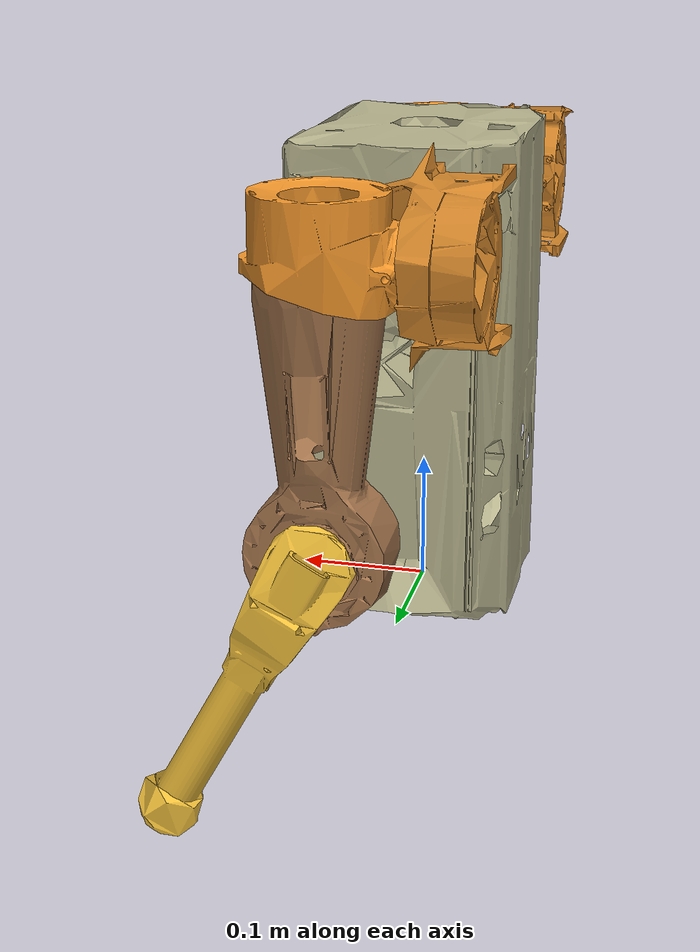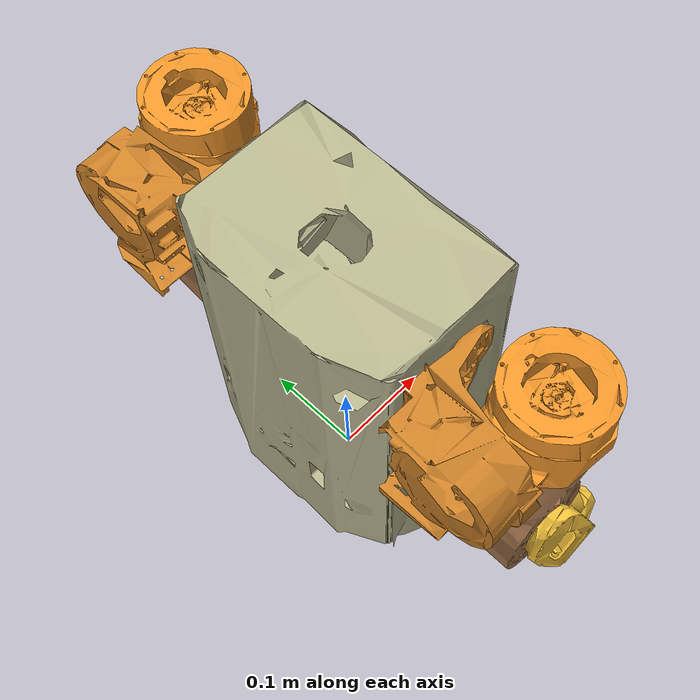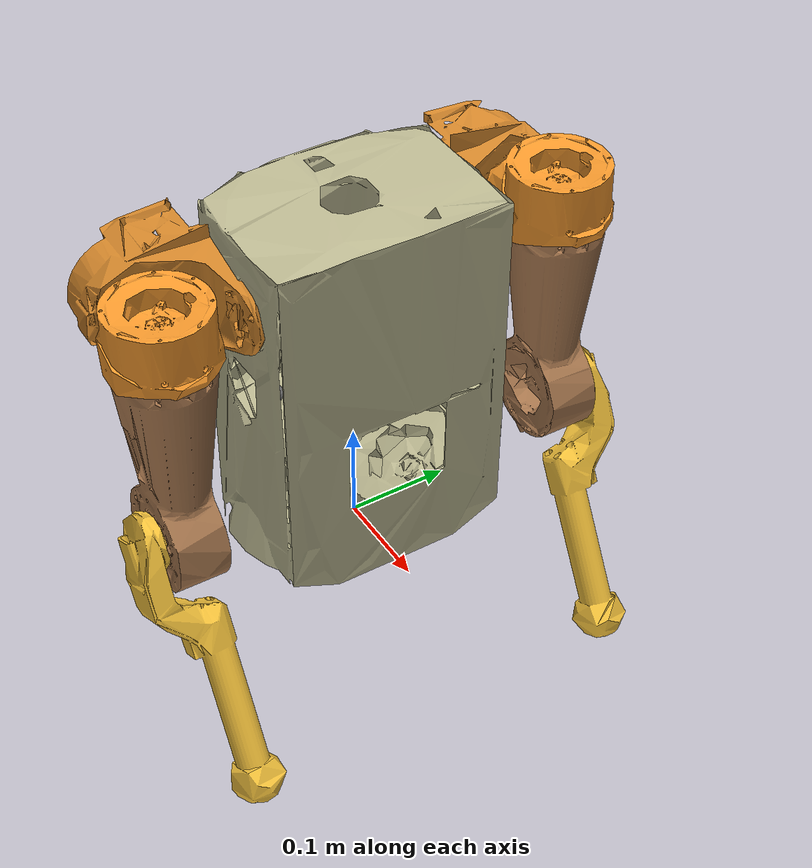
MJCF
<mujoco model="dash_upper_body">
  <compiler angle="radian" meshdir="assets" autolimits="true"/>

  <default>
    <default class="dash">
      <default class="visual">
        <geom type="mesh" group="2" contype="0" conaffinity="0" density="0"/>
      </default>
      <default class="collision">
        <geom group="3" contype="1" conaffinity="1" density="0"/>
      </default>
    </default>
  </default>

  <asset>
    <mesh name="Torso" file="Torso.stl"/>
    <mesh name="R_prox_shoulder" file="R_prox_shoulder.stl"/>
    <mesh name="R_dist_shoulder" file="R_dist_shoulder.stl"/>
    <mesh name="R_upper_arm" file="R_upper_arm.stl"/>
    <mesh name="R_lower_arm" file="R_lower_arm.stl"/>
    <mesh name="L_prox_shoulder" file="L_prox_shoulder.stl"/>
    <mesh name="L_dist_shoulder" file="L_dist_shoulder.stl"/>
    <mesh name="L_upper_arm" file="L_upper_arm.stl"/>
    <mesh name="L_lower_arm" file="L_lower_arm.stl"/>
  </asset>

  <worldbody>
    <body name="torso" childclass="dash">
      <inertial pos="0.00593411 -3.00183e-05 0.163011" quat="0.99966 -6.30433e-05 0.0260827 -0.000344135" mass="10.8104" diaginertia="0.203306 0.165966 0.0687363"/>
      <geom class="visual" name="torso_visual" rgba="0.723666 0.709829 0.56081 1" mesh="Torso"/>
      <geom class="collision" name="torso_collision" type="box" pos="0 0 0.17" size="0.08 0.13 0.19"/>

      <site name="imu_in_torso" size="0.01" pos="0.006 -0.085 0.19"/>

      <body name="r_prox_shoulder" pos="0.020796 -0.1117 0.3">
        <inertial pos="-0.0638541 -0.0594545 -8.464e-05" quat="0.68734 0.692062 -0.155178 -0.156633" mass="1.26433" diaginertia="0.00271013 0.00210315 0.0017068"/>
        <joint name="r_shoulder_pitch" axis="0 1 0" range="-0.6 1.1"/>
        <geom class="visual" name="r_prox_shoulder_visual" rgba="0.819914 0.51932 0.162864 1" mesh="R_prox_shoulder"/>
        <body name="r_dist_shoulder" pos="-0.05 -0.0713 0">
          <inertial pos="0.0551627 -0.0110152 0.0187494" quat="0.0956691 0.63929 -0.0866565 0.758054" mass="1.02859" diaginertia="0.00166989 0.00125774 0.00103113"/>
          <joint name="r_shoulder_roll" axis="1 0 0" range="-0.6 0.3"/>
          <geom class="visual" name="r_dist_shoulder_visual" rgba="0.954951 0.592636 0.169477 1" mesh="R_dist_shoulder"/>
          <body name="r_upper_arm" pos="0.0605 -0.012 0.002">
            <inertial pos="-2.136e-07 -0.00212635 -0.156389" quat="0.707066 -0.00754832 0.00754832 0.707066" mass="1.50071" diaginertia="0.00970874 0.00919509 0.00162113"/>
            <joint name="r_shoulder_yaw" axis="0 0 1" range="-0.8 0.8"/>
            <geom class="visual" name="r_upper_arm_visual" rgba="0.654942 0.465554 0.304724 1" mesh="R_upper_arm"/>
            <geom class="collision" name="r_upper_arm_collision" type="capsule" fromto="0 0 -0.03 0 -0.02 -0.185" size="0.042"/>
            <body name="r_lower_arm" pos="0 -0.023775 -0.2025" quat="0.968912 0 -0.247404 0">
              <inertial pos="-3e-08 0.0082445 -0.103214" quat="0.997346 0.0728135 0 0" mass="0.339126" diaginertia="0.00278269 0.00278265 0.000126918"/>
              <joint name="r_elbow_pitch" axis="0 1 0" range="-1.5 0"/>
              <geom class="visual" name="r_lower_arm_visual" rgba="0.954585 0.75822 0.229953 1" mesh="R_lower_arm"/>
              <geom class="collision" name="r_lower_arm_collision" type="capsule" fromto="0 0.008 -0.015 0 0.008 -0.25" size="0.03"/>
              <!-- The forearm capsule's rounded end IS the hand: the cap is a
                   sphere of radius 0.03 centred at z=-0.25. The site sits on its
                   inner surface, facing the midline. -->
              <site name="r_hand" pos="0 0.038 -0.25" size="0.006" rgba="1 0 0 1"/>
            </body>
          </body>
        </body>
      </body>

      <body name="l_prox_shoulder" pos="0.020796 0.112 0.3">
        <inertial pos="-0.0638541 0.0594541 -8.46e-05" quat="0.692069 0.687332 0.15663 0.155183" mass="1.26433" diaginertia="0.0027101 0.00210313 0.00170681"/>
        <joint name="l_shoulder_pitch" axis="0 1 0" range="-0.6 1.1"/>
        <geom class="visual" name="l_prox_shoulder_visual" rgba="0.819914 0.51932 0.162864 1" mesh="L_prox_shoulder"/>
        <body name="l_dist_shoulder" pos="-0.05 0.0713 0">
          <inertial pos="0.0551627 0.0108105 0.0187494" quat="-0.0885499 0.639868 0.0872463 0.758364" mass="1.02859" diaginertia="0.00166915 0.00125704 0.00103166"/>
          <joint name="l_shoulder_roll" axis="1 0 0" range="-0.3 0.6"/>
          <geom class="visual" name="l_dist_shoulder_visual" rgba="0.954951 0.592636 0.169477 1" mesh="L_dist_shoulder"/>
          <body name="l_upper_arm" pos="0.0605 0.012 0.002">
            <inertial pos="-2.027e-07 0.00212635 -0.156249" quat="0.707064 0.00774823 -0.00774636 0.707064" mass="1.50071" diaginertia="0.00968948 0.00917565 0.00162095"/>
            <joint name="l_shoulder_yaw" axis="0 0 1" range="-0.8 0.8"/>
            <geom class="visual" name="l_upper_arm_visual" rgba="0.654942 0.465554 0.304724 1" mesh="L_upper_arm"/>
            <geom class="collision" name="l_upper_arm_collision" type="capsule" fromto="0 0 -0.03 0 0.02 -0.185" size="0.042"/>
            <body name="l_lower_arm" pos="0 0.023775 -0.2025" quat="0.968912 0 -0.247404 0">
              <inertial pos="-3e-08 0.0082445 -0.103214" quat="0.997346 -0.0728135 0 0" mass="0.339126" diaginertia="0.00278269 0.00278265 0.000126918"/>
              <joint name="l_elbow_pitch" axis="0 1 0" range="-1.5 0"/>
              <geom class="visual" name="l_lower_arm_visual" rgba="0.954585 0.75822 0.229953 1" mesh="L_lower_arm"/>
              <geom class="collision" name="l_lower_arm_collision" type="capsule" fromto="0 0.008 -0.015 0 0.008 -0.25" size="0.03"/>
              <!-- The forearm capsule's rounded end IS the hand: the cap is a
                   sphere of radius 0.03 centred at z=-0.25. The site sits on its
                   inner surface, facing the midline. -->
              <site name="l_hand" pos="0 -0.038 -0.25" size="0.006" rgba="1 0 0 1"/>
            </body>
          </body>
        </body>
      </body>
    </body>
  </worldbody>
</mujoco>
